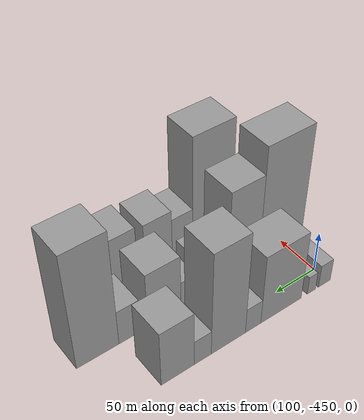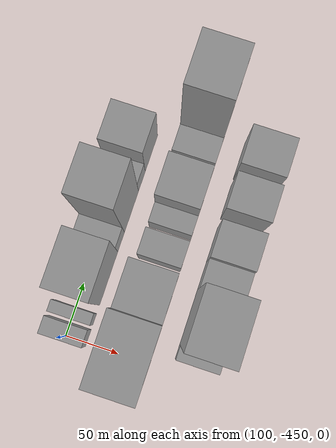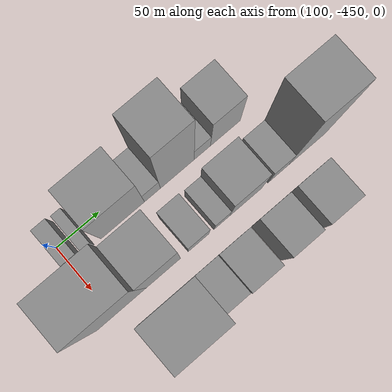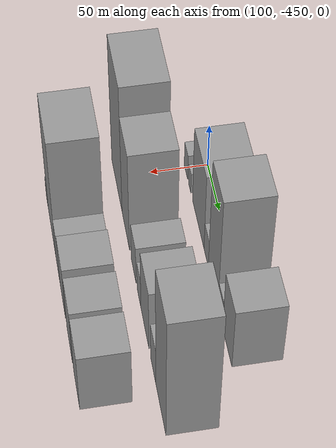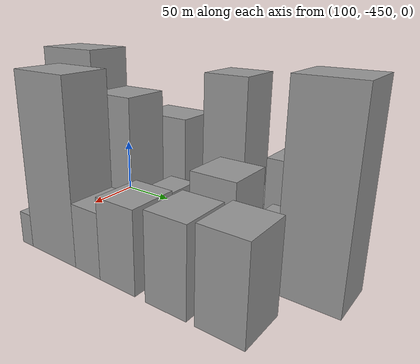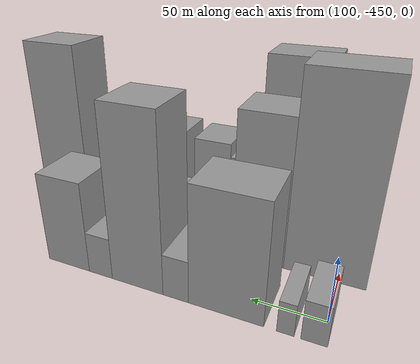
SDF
<sdf version="1.6">
 <world name="default">
  <model name="building_12">
   <static>1</static>
   <pose>100.0000 -445.1040 0 0.000000 0.000000 0.000000</pose>
   <link name="link">
    <pose>0 0 15.00 0 0 0</pose>
    <collision name="collision"><geometry><box><size>40.0000 15.9371 30.0000</size></box></geometry></collision>
    <visual name="visual">
     <cast_shadows>0</cast_shadows>
     <geometry><box><size>40.0000 15.9371 30.0000</size></box></geometry>
     <material>
      <script>
       <uri>model://grey_wall/materials/scripts</uri>
       <uri>model://grey_wall/materials/textures</uri>
       <name>vrc/grey_wall</name>
      </script>
     </material>
    </visual>
   </link>
  </model>
  <model name="building_13">
   <static>1</static>
   <pose>100.0000 -427.6793 0 0.000000 0.000000 0.000000</pose>
   <link name="link">
    <pose>0 0 12.00 0 0 0</pose>
    <collision name="collision"><geometry><box><size>40.0000 10.9123 24.0000</size></box></geometry></collision>
    <visual name="visual">
     <cast_shadows>0</cast_shadows>
     <geometry><box><size>40.0000 10.9123 24.0000</size></box></geometry>
     <material>
      <script>
       <uri>model://grey_wall/materials/scripts</uri>
       <uri>model://grey_wall/materials/textures</uri>
       <name>vrc/grey_wall</name>
      </script>
     </material>
    </visual>
   </link>
  </model>
  <model name="building_14">
   <static>1</static>
   <pose>100.0000 -388.5690 0 0.000000 0.000000 0.000000</pose>
   <link name="link">
    <pose>0 0 45.00 0 0 0</pose>
    <collision name="collision"><geometry><box><size>40.0000 51.3082 90.0000</size></box></geometry></collision>
    <visual name="visual">
     <cast_shadows>0</cast_shadows>
     <geometry><box><size>40.0000 51.3082 90.0000</size></box></geometry>
     <material>
      <script>
       <uri>model://grey_wall/materials/scripts</uri>
       <uri>model://grey_wall/materials/textures</uri>
       <name>vrc/grey_wall</name>
      </script>
     </material>
    </visual>
   </link>
  </model>
  <model name="building_15">
   <static>1</static>
   <pose>100.0000 -353.4953 0 0.000000 0.000000 0.000000</pose>
   <link name="link">
    <pose>0 0 16.50 0 0 0</pose>
    <collision name="collision"><geometry><box><size>40.0000 18.8391 33.0000</size></box></geometry></collision>
    <visual name="visual">
     <cast_shadows>0</cast_shadows>
     <geometry><box><size>40.0000 18.8391 33.0000</size></box></geometry>
     <material>
      <script>
       <uri>model://grey_wall/materials/scripts</uri>
       <uri>model://grey_wall/materials/textures</uri>
       <name>vrc/grey_wall</name>
      </script>
     </material>
    </visual>
   </link>
  </model>
  <model name="building_16">
   <static>1</static>
   <pose>100.0000 -323.8756 0 0.000000 0.000000 0.000000</pose>
   <link name="link">
    <pose>0 0 66.00 0 0 0</pose>
    <collision name="collision"><geometry><box><size>40.0000 40.4003 132.0000</size></box></geometry></collision>
    <visual name="visual">
     <cast_shadows>0</cast_shadows>
     <geometry><box><size>40.0000 40.4003 132.0000</size></box></geometry>
     <material>
      <script>
       <uri>model://grey_wall/materials/scripts</uri>
       <uri>model://grey_wall/materials/textures</uri>
       <name>vrc/grey_wall</name>
      </script>
     </material>
    </visual>
   </link>
  </model>
  <model name="building_17">
   <static>1</static>
   <pose>100.0000 -293.9246 0 0.000000 0.000000 0.000000</pose>
   <link name="link">
    <pose>0 0 16.50 0 0 0</pose>
    <collision name="collision"><geometry><box><size>40.0000 19.5017 33.0000</size></box></geometry></collision>
    <visual name="visual">
     <cast_shadows>0</cast_shadows>
     <geometry><box><size>40.0000 19.5017 33.0000</size></box></geometry>
     <material>
      <script>
       <uri>model://grey_wall/materials/scripts</uri>
       <uri>model://grey_wall/materials/textures</uri>
       <name>vrc/grey_wall</name>
      </script>
     </material>
    </visual>
   </link>
  </model>
  <model name="building_18">
   <static>1</static>
   <pose>100.0000 -266.0162 0 0.000000 0.000000 0.000000</pose>
   <link name="link">
    <pose>0 0 36.00 0 0 0</pose>
    <collision name="collision"><geometry><box><size>40.0000 36.3152 72.0000</size></box></geometry></collision>
    <visual name="visual">
     <cast_shadows>0</cast_shadows>
     <geometry><box><size>40.0000 36.3152 72.0000</size></box></geometry>
     <material>
      <script>
       <uri>model://grey_wall/materials/scripts</uri>
       <uri>model://grey_wall/materials/textures</uri>
       <name>vrc/grey_wall</name>
      </script>
     </material>
    </visual>
   </link>
  </model>
  <model name="building_66">
   <static>1</static>
   <pose>160.0000 -440.2251 0 0.000000 0.000000 0.000000</pose>
   <link name="link">
    <pose>0 0 75.00 0 0 0</pose>
    <collision name="collision"><geometry><box><size>40.0000 57.5505 150.0000</size></box></geometry></collision>
    <visual name="visual">
     <cast_shadows>0</cast_shadows>
     <geometry><box><size>40.0000 57.5505 150.0000</size></box></geometry>
     <material>
      <script>
       <uri>model://grey_wall/materials/scripts</uri>
       <uri>model://grey_wall/materials/textures</uri>
       <name>vrc/grey_wall</name>
      </script>
     </material>
    </visual>
   </link>
  </model>
  <model name="building_67">
   <static>1</static>
   <pose>160.0000 -391.5086 0 0.000000 0.000000 0.000000</pose>
   <link name="link">
    <pose>0 0 58.50 0 0 0</pose>
    <collision name="collision"><geometry><box><size>40.0000 39.8824 117.0000</size></box></geometry></collision>
    <visual name="visual">
     <cast_shadows>0</cast_shadows>
     <geometry><box><size>40.0000 39.8824 117.0000</size></box></geometry>
     <material>
      <script>
       <uri>model://grey_wall/materials/scripts</uri>
       <uri>model://grey_wall/materials/textures</uri>
       <name>vrc/grey_wall</name>
      </script>
     </material>
    </visual>
   </link>
  </model>
  <model name="building_68">
   <static>1</static>
   <pose>160.0000 -350.3359 0 0.000000 0.000000 0.000000</pose>
   <link name="link">
    <pose>0 0 22.50 0 0 0</pose>
    <collision name="collision"><geometry><box><size>40.0000 24.4630 45.0000</size></box></geometry></collision>
    <visual name="visual">
     <cast_shadows>0</cast_shadows>
     <geometry><box><size>40.0000 24.4630 45.0000</size></box></geometry>
     <material>
      <script>
       <uri>model://grey_wall/materials/scripts</uri>
       <uri>model://grey_wall/materials/textures</uri>
       <name>vrc/grey_wall</name>
      </script>
     </material>
    </visual>
   </link>
  </model>
  <model name="building_69">
   <static>1</static>
   <pose>160.0000 -322.9297 0 0.000000 0.000000 0.000000</pose>
   <link name="link">
    <pose>0 0 18.00 0 0 0</pose>
    <collision name="collision"><geometry><box><size>40.0000 18.3494 36.0000</size></box></geometry></collision>
    <visual name="visual">
     <cast_shadows>0</cast_shadows>
     <geometry><box><size>40.0000 18.3494 36.0000</size></box></geometry>
     <material>
      <script>
       <uri>model://grey_wall/materials/scripts</uri>
       <uri>model://grey_wall/materials/textures</uri>
       <name>vrc/grey_wall</name>
      </script>
     </material>
    </visual>
   </link>
  </model>
  <model name="building_70">
   <static>1</static>
   <pose>160.0000 -294.4099 0 0.000000 0.000000 0.000000</pose>
   <link name="link">
    <pose>0 0 36.00 0 0 0</pose>
    <collision name="collision"><geometry><box><size>40.0000 38.6903 72.0000</size></box></geometry></collision>
    <visual name="visual">
     <cast_shadows>0</cast_shadows>
     <geometry><box><size>40.0000 38.6903 72.0000</size></box></geometry>
     <material>
      <script>
       <uri>model://grey_wall/materials/scripts</uri>
       <uri>model://grey_wall/materials/textures</uri>
       <name>vrc/grey_wall</name>
      </script>
     </material>
    </visual>
   </link>
  </model>
  <model name="building_71">
   <static>1</static>
   <pose>160.0000 -255.0098 0 0.000000 0.000000 0.000000</pose>
   <link name="link">
    <pose>0 0 22.50 0 0 0</pose>
    <collision name="collision"><geometry><box><size>40.0000 24.1099 45.0000</size></box></geometry></collision>
    <visual name="visual">
     <cast_shadows>0</cast_shadows>
     <geometry><box><size>40.0000 24.1099 45.0000</size></box></geometry>
     <material>
      <script>
       <uri>model://grey_wall/materials/scripts</uri>
       <uri>model://grey_wall/materials/textures</uri>
       <name>vrc/grey_wall</name>
      </script>
     </material>
    </visual>
   </link>
  </model>
  <model name="building_72">
   <static>1</static>
   <pose>160.0000 -220.1910 0 0.000000 0.000000 0.000000</pose>
   <link name="link">
    <pose>0 0 73.50 0 0 0</pose>
    <collision name="collision"><geometry><box><size>40.0000 45.5279 147.0000</size></box></geometry></collision>
    <visual name="visual">
     <cast_shadows>0</cast_shadows>
     <geometry><box><size>40.0000 45.5279 147.0000</size></box></geometry>
     <material>
      <script>
       <uri>model://grey_wall/materials/scripts</uri>
       <uri>model://grey_wall/materials/textures</uri>
       <name>vrc/grey_wall</name>
      </script>
     </material>
    </visual>
   </link>
  </model>
  <model name="building_118">
   <static>1</static>
   <pose>220.0000 -431.1087 0 0.000000 0.000000 0.000000</pose>
   <link name="link">
    <pose>0 0 13.50 0 0 0</pose>
    <collision name="collision"><geometry><box><size>40.0000 12.9327 27.0000</size></box></geometry></collision>
    <visual name="visual">
     <cast_shadows>0</cast_shadows>
     <geometry><box><size>40.0000 12.9327 27.0000</size></box></geometry>
     <material>
      <script>
       <uri>model://grey_wall/materials/scripts</uri>
       <uri>model://grey_wall/materials/textures</uri>
       <name>vrc/grey_wall</name>
      </script>
     </material>
    </visual>
   </link>
  </model>
  <model name="building_119">
   <static>1</static>
   <pose>220.0000 -398.8670 0 0.000000 0.000000 0.000000</pose>
   <link name="link">
    <pose>0 0 70.50 0 0 0</pose>
    <collision name="collision"><geometry><box><size>40.0000 51.5508 141.0000</size></box></geometry></collision>
    <visual name="visual">
     <cast_shadows>0</cast_shadows>
     <geometry><box><size>40.0000 51.5508 141.0000</size></box></geometry>
     <material>
      <script>
       <uri>model://grey_wall/materials/scripts</uri>
       <uri>model://grey_wall/materials/textures</uri>
       <name>vrc/grey_wall</name>
      </script>
     </material>
    </visual>
   </link>
  </model>
  <model name="building_120">
   <static>1</static>
   <pose>220.0000 -360.1371 0 0.000000 0.000000 0.000000</pose>
   <link name="link">
    <pose>0 0 25.50 0 0 0</pose>
    <collision name="collision"><geometry><box><size>40.0000 25.9091 51.0000</size></box></geometry></collision>
    <visual name="visual">
     <cast_shadows>0</cast_shadows>
     <geometry><box><size>40.0000 25.9091 51.0000</size></box></geometry>
     <material>
      <script>
       <uri>model://grey_wall/materials/scripts</uri>
       <uri>model://grey_wall/materials/textures</uri>
       <name>vrc/grey_wall</name>
      </script>
     </material>
    </visual>
   </link>
  </model>
  <model name="building_121">
   <static>1</static>
   <pose>220.0000 -330.4870 0 0.000000 0.000000 0.000000</pose>
   <link name="link">
    <pose>0 0 31.50 0 0 0</pose>
    <collision name="collision"><geometry><box><size>40.0000 33.3911 63.0000</size></box></geometry></collision>
    <visual name="visual">
     <cast_shadows>0</cast_shadows>
     <geometry><box><size>40.0000 33.3911 63.0000</size></box></geometry>
     <material>
      <script>
       <uri>model://grey_wall/materials/scripts</uri>
       <uri>model://grey_wall/materials/textures</uri>
       <name>vrc/grey_wall</name>
      </script>
     </material>
    </visual>
   </link>
  </model>
  <model name="building_122">
   <static>1</static>
   <pose>220.0000 -288.1313 0 0.000000 0.000000 0.000000</pose>
   <link name="link">
    <pose>0 0 33.00 0 0 0</pose>
    <collision name="collision"><geometry><box><size>40.0000 33.3202 66.0000</size></box></geometry></collision>
    <visual name="visual">
     <cast_shadows>0</cast_shadows>
     <geometry><box><size>40.0000 33.3202 66.0000</size></box></geometry>
     <material>
      <script>
       <uri>model://grey_wall/materials/scripts</uri>
       <uri>model://grey_wall/materials/textures</uri>
       <name>vrc/grey_wall</name>
      </script>
     </material>
    </visual>
   </link>
  </model>
  <model name="building_123">
   <static>1</static>
   <pose>220.0000 -247.7964 0 0.000000 0.000000 0.000000</pose>
   <link name="link">
    <pose>0 0 34.50 0 0 0</pose>
    <collision name="collision"><geometry><box><size>40.0000 35.3495 69.0000</size></box></geometry></collision>
    <visual name="visual">
     <cast_shadows>0</cast_shadows>
     <geometry><box><size>40.0000 35.3495 69.0000</size></box></geometry>
     <material>
      <script>
       <uri>model://grey_wall/materials/scripts</uri>
       <uri>model://grey_wall/materials/textures</uri>
       <name>vrc/grey_wall</name>
      </script>
     </material>
    </visual>
   </link>
  </model>
 </world>
</sdf>
